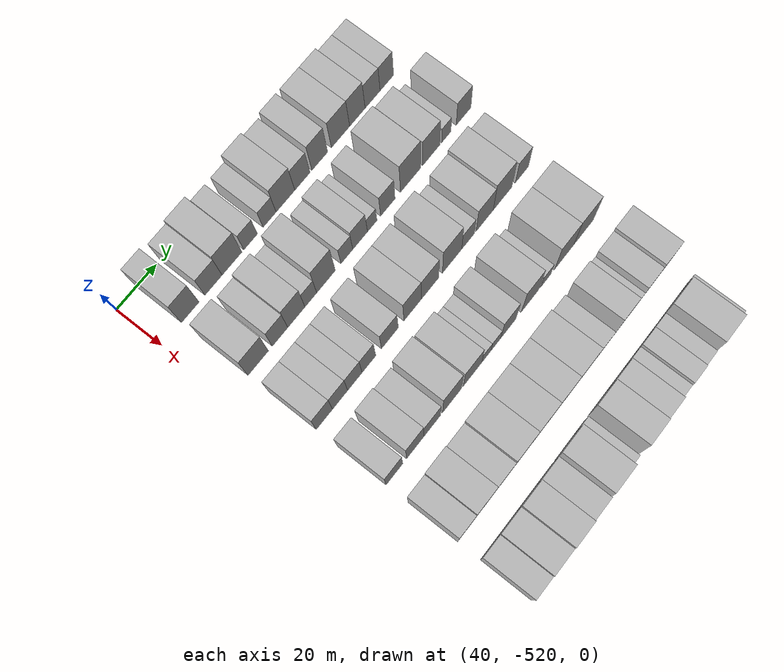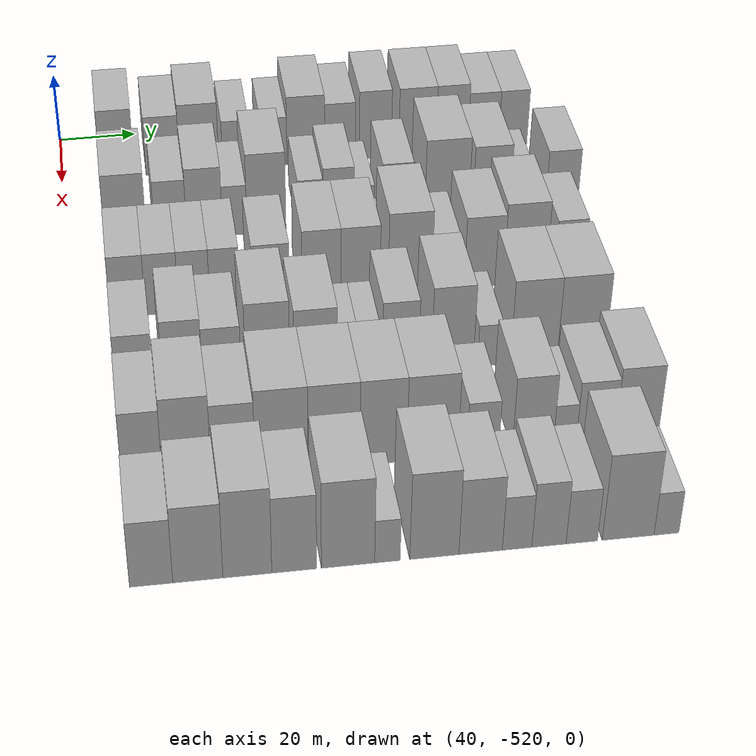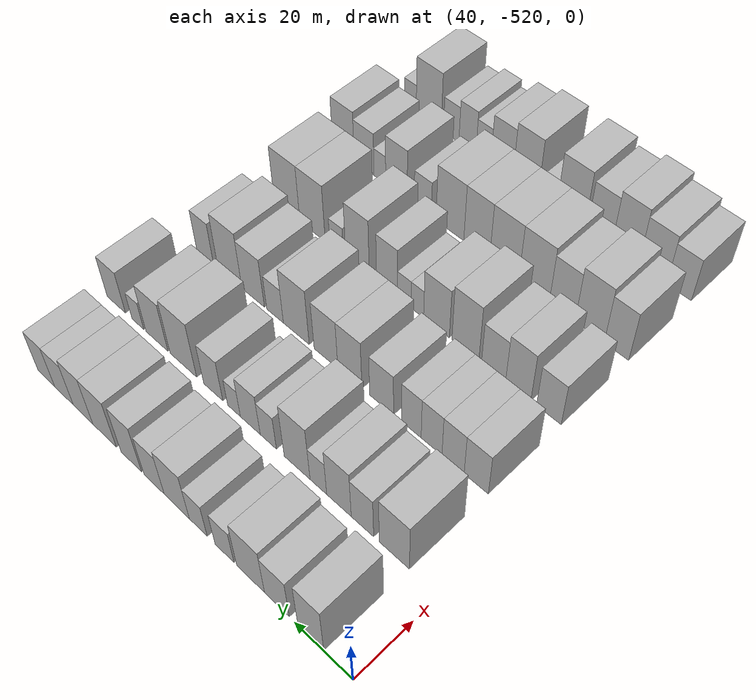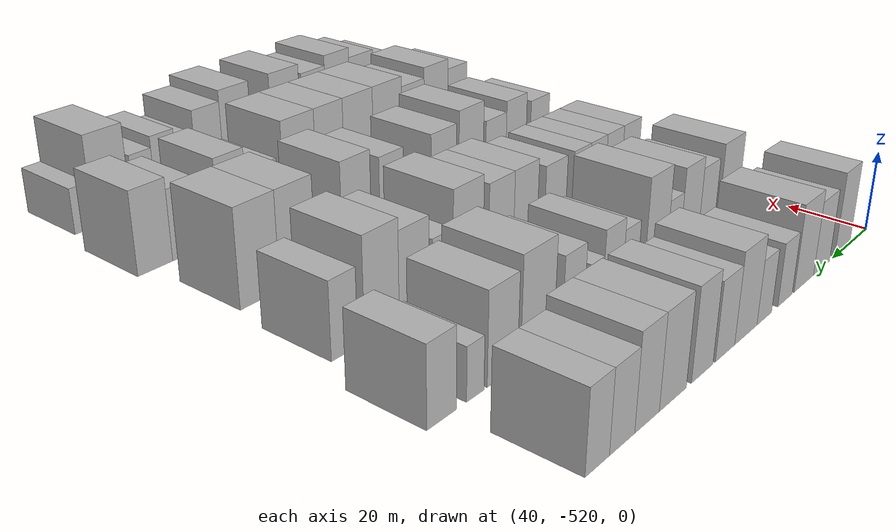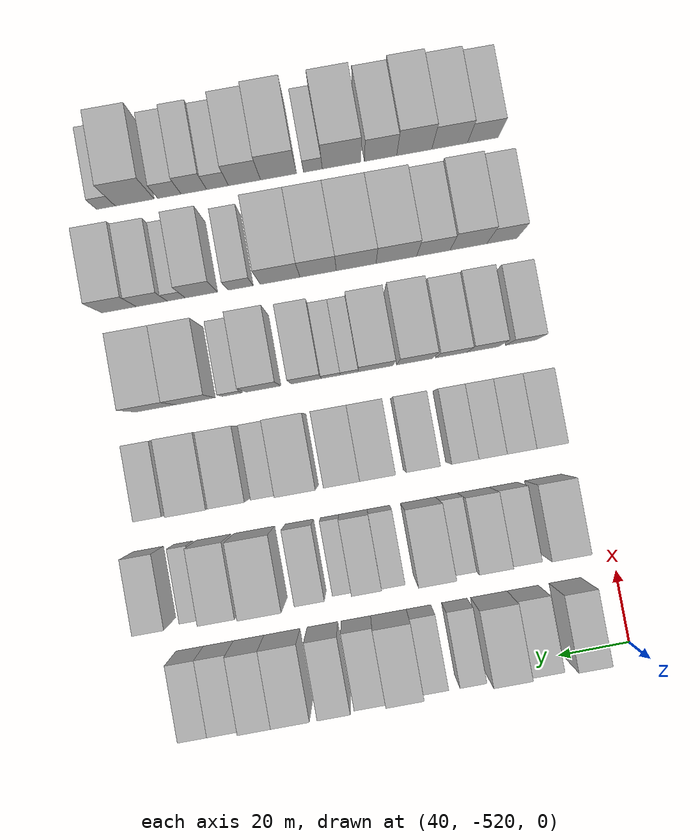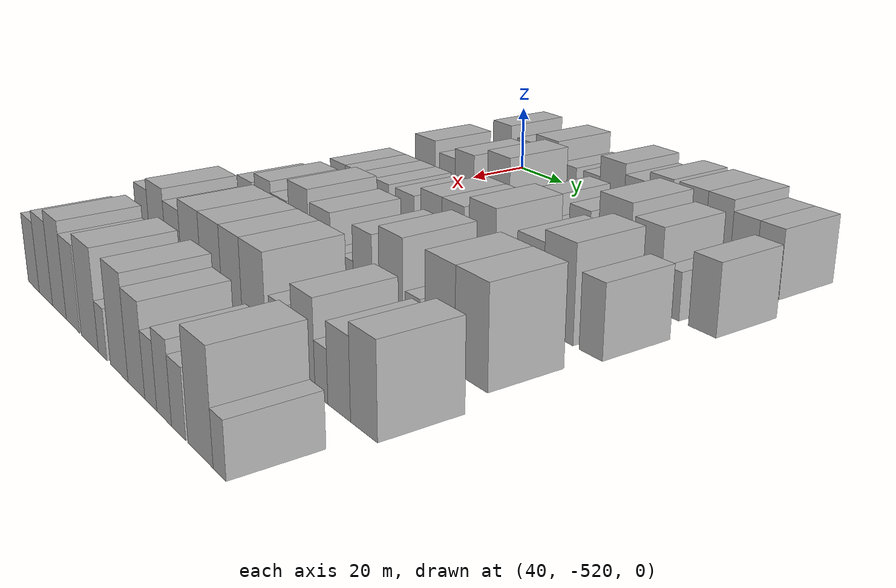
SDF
<sdf version="1.6">
 <world name="default">
  <model name="building_1">
   <static>1</static>
   <pose>50.0000 -505.5305 0 0.000000 0.000000 0.000000</pose>
   <link name="link">
    <pose>0 0 10.50 0 0 0</pose>
    <collision name="collision"><geometry><box><size>20.0000 8.9389 21.0000</size></box></geometry></collision>
    <visual name="visual">
     <cast_shadows>0</cast_shadows>
     <geometry><box><size>20.0000 8.9389 21.0000</size></box></geometry>
     <material>
      <script>
       <uri>model://HANNAS_wall/materials/scripts</uri>
       <uri>model://HANNAS_wall/materials/textures</uri>
       <name>vrc/HANNAS_wall</name>
      </script>
     </material>
    </visual>
   </link>
  </model>
  <model name="building_2">
   <static>1</static>
   <pose>50.0000 -493.6415 0 0.000000 0.000000 0.000000</pose>
   <link name="link">
    <pose>0 0 9.00 0 0 0</pose>
    <collision name="collision"><geometry><box><size>20.0000 8.8392 18.0000</size></box></geometry></collision>
    <visual name="visual">
     <cast_shadows>0</cast_shadows>
     <geometry><box><size>20.0000 8.8392 18.0000</size></box></geometry>
     <material>
      <script>
       <uri>model://HANNAS_wall/materials/scripts</uri>
       <uri>model://HANNAS_wall/materials/textures</uri>
       <name>vrc/HANNAS_wall</name>
      </script>
     </material>
    </visual>
   </link>
  </model>
  <model name="building_3">
   <static>1</static>
   <pose>50.0000 -484.0873 0 0.000000 0.000000 0.000000</pose>
   <link name="link">
    <pose>0 0 10.50 0 0 0</pose>
    <collision name="collision"><geometry><box><size>20.0000 10.2692 21.0000</size></box></geometry></collision>
    <visual name="visual">
     <cast_shadows>0</cast_shadows>
     <geometry><box><size>20.0000 10.2692 21.0000</size></box></geometry>
     <material>
      <script>
       <uri>model://HANNAS_wall/materials/scripts</uri>
       <uri>model://HANNAS_wall/materials/textures</uri>
       <name>vrc/HANNAS_wall</name>
      </script>
     </material>
    </visual>
   </link>
  </model>
  <model name="building_4">
   <static>1</static>
   <pose>50.0000 -474.3811 0 0.000000 0.000000 0.000000</pose>
   <link name="link">
    <pose>0 0 7.50 0 0 0</pose>
    <collision name="collision"><geometry><box><size>20.0000 7.1433 15.0000</size></box></geometry></collision>
    <visual name="visual">
     <cast_shadows>0</cast_shadows>
     <geometry><box><size>20.0000 7.1433 15.0000</size></box></geometry>
     <material>
      <script>
       <uri>model://HANNAS_wall/materials/scripts</uri>
       <uri>model://HANNAS_wall/materials/textures</uri>
       <name>vrc/HANNAS_wall</name>
      </script>
     </material>
    </visual>
   </link>
  </model>
  <model name="building_5">
   <static>1</static>
   <pose>50.0000 -464.3578 0 0.000000 0.000000 0.000000</pose>
   <link name="link">
    <pose>0 0 7.50 0 0 0</pose>
    <collision name="collision"><geometry><box><size>20.0000 6.9032 15.0000</size></box></geometry></collision>
    <visual name="visual">
     <cast_shadows>0</cast_shadows>
     <geometry><box><size>20.0000 6.9032 15.0000</size></box></geometry>
     <material>
      <script>
       <uri>model://HANNAS_wall/materials/scripts</uri>
       <uri>model://HANNAS_wall/materials/textures</uri>
       <name>vrc/HANNAS_wall</name>
      </script>
     </material>
    </visual>
   </link>
  </model>
  <model name="building_6">
   <static>1</static>
   <pose>50.0000 -455.9039 0 0.000000 0.000000 0.000000</pose>
   <link name="link">
    <pose>0 0 10.50 0 0 0</pose>
    <collision name="collision"><geometry><box><size>20.0000 10.0047 21.0000</size></box></geometry></collision>
    <visual name="visual">
     <cast_shadows>0</cast_shadows>
     <geometry><box><size>20.0000 10.0047 21.0000</size></box></geometry>
     <material>
      <script>
       <uri>model://HANNAS_wall/materials/scripts</uri>
       <uri>model://HANNAS_wall/materials/textures</uri>
       <name>vrc/HANNAS_wall</name>
      </script>
     </material>
    </visual>
   </link>
  </model>
  <model name="building_7">
   <static>1</static>
   <pose>50.0000 -446.7945 0 0.000000 0.000000 0.000000</pose>
   <link name="link">
    <pose>0 0 9.00 0 0 0</pose>
    <collision name="collision"><geometry><box><size>20.0000 8.2141 18.0000</size></box></geometry></collision>
    <visual name="visual">
     <cast_shadows>0</cast_shadows>
     <geometry><box><size>20.0000 8.2141 18.0000</size></box></geometry>
     <material>
      <script>
       <uri>model://HANNAS_wall/materials/scripts</uri>
       <uri>model://HANNAS_wall/materials/textures</uri>
       <name>vrc/HANNAS_wall</name>
      </script>
     </material>
    </visual>
   </link>
  </model>
  <model name="building_8">
   <static>1</static>
   <pose>50.0000 -437.3820 0 0.000000 0.000000 0.000000</pose>
   <link name="link">
    <pose>0 0 10.50 0 0 0</pose>
    <collision name="collision"><geometry><box><size>20.0000 8.6109 21.0000</size></box></geometry></collision>
    <visual name="visual">
     <cast_shadows>0</cast_shadows>
     <geometry><box><size>20.0000 8.6109 21.0000</size></box></geometry>
     <material>
      <script>
       <uri>model://HANNAS_wall/materials/scripts</uri>
       <uri>model://HANNAS_wall/materials/textures</uri>
       <name>vrc/HANNAS_wall</name>
      </script>
     </material>
    </visual>
   </link>
  </model>
  <model name="building_9">
   <static>1</static>
   <pose>50.0000 -426.0398 0 0.000000 0.000000 0.000000</pose>
   <link name="link">
    <pose>0 0 10.50 0 0 0</pose>
    <collision name="collision"><geometry><box><size>20.0000 10.0735 21.0000</size></box></geometry></collision>
    <visual name="visual">
     <cast_shadows>0</cast_shadows>
     <geometry><box><size>20.0000 10.0735 21.0000</size></box></geometry>
     <material>
      <script>
       <uri>model://HANNAS_wall/materials/scripts</uri>
       <uri>model://HANNAS_wall/materials/textures</uri>
       <name>vrc/HANNAS_wall</name>
      </script>
     </material>
    </visual>
   </link>
  </model>
  <model name="building_10">
   <static>1</static>
   <pose>50.0000 -416.6983 0 0.000000 0.000000 0.000000</pose>
   <link name="link">
    <pose>0 0 10.50 0 0 0</pose>
    <collision name="collision"><geometry><box><size>20.0000 8.6096 21.0000</size></box></geometry></collision>
    <visual name="visual">
     <cast_shadows>0</cast_shadows>
     <geometry><box><size>20.0000 8.6096 21.0000</size></box></geometry>
     <material>
      <script>
       <uri>model://HANNAS_wall/materials/scripts</uri>
       <uri>model://HANNAS_wall/materials/textures</uri>
       <name>vrc/HANNAS_wall</name>
      </script>
     </material>
    </visual>
   </link>
  </model>
  <model name="building_11">
   <static>1</static>
   <pose>50.0000 -408.2185 0 0.000000 0.000000 0.000000</pose>
   <link name="link">
    <pose>0 0 9.00 0 0 0</pose>
    <collision name="collision"><geometry><box><size>20.0000 8.3500 18.0000</size></box></geometry></collision>
    <visual name="visual">
     <cast_shadows>0</cast_shadows>
     <geometry><box><size>20.0000 8.3500 18.0000</size></box></geometry>
     <material>
      <script>
       <uri>model://HANNAS_wall/materials/scripts</uri>
       <uri>model://HANNAS_wall/materials/textures</uri>
       <name>vrc/HANNAS_wall</name>
      </script>
     </material>
    </visual>
   </link>
  </model>
  <model name="building_12">
   <static>1</static>
   <pose>50.0000 -400.2078 0 0.000000 0.000000 0.000000</pose>
   <link name="link">
    <pose>0 0 9.00 0 0 0</pose>
    <collision name="collision"><geometry><box><size>20.0000 7.6714 18.0000</size></box></geometry></collision>
    <visual name="visual">
     <cast_shadows>0</cast_shadows>
     <geometry><box><size>20.0000 7.6714 18.0000</size></box></geometry>
     <material>
      <script>
       <uri>model://HANNAS_wall/materials/scripts</uri>
       <uri>model://HANNAS_wall/materials/textures</uri>
       <name>vrc/HANNAS_wall</name>
      </script>
     </material>
    </visual>
   </link>
  </model>
  <model name="building_105">
   <static>1</static>
   <pose>79.0000 -504.7900 0 0.000000 0.000000 0.000000</pose>
   <link name="link">
    <pose>0 0 10.50 0 0 0</pose>
    <collision name="collision"><geometry><box><size>20.0000 10.4199 21.0000</size></box></geometry></collision>
    <visual name="visual">
     <cast_shadows>0</cast_shadows>
     <geometry><box><size>20.0000 10.4199 21.0000</size></box></geometry>
     <material>
      <script>
       <uri>model://HANNAS_wall/materials/scripts</uri>
       <uri>model://HANNAS_wall/materials/textures</uri>
       <name>vrc/HANNAS_wall</name>
      </script>
     </material>
    </visual>
   </link>
  </model>
  <model name="building_106">
   <static>1</static>
   <pose>79.0000 -493.5761 0 0.000000 0.000000 0.000000</pose>
   <link name="link">
    <pose>0 0 9.00 0 0 0</pose>
    <collision name="collision"><geometry><box><size>20.0000 8.0078 18.0000</size></box></geometry></collision>
    <visual name="visual">
     <cast_shadows>0</cast_shadows>
     <geometry><box><size>20.0000 8.0078 18.0000</size></box></geometry>
     <material>
      <script>
       <uri>model://HANNAS_wall/materials/scripts</uri>
       <uri>model://HANNAS_wall/materials/textures</uri>
       <name>vrc/HANNAS_wall</name>
      </script>
     </material>
    </visual>
   </link>
  </model>
  <model name="building_107">
   <static>1</static>
   <pose>79.0000 -485.0852 0 0.000000 0.000000 0.000000</pose>
   <link name="link">
    <pose>0 0 10.50 0 0 0</pose>
    <collision name="collision"><geometry><box><size>20.0000 8.9740 21.0000</size></box></geometry></collision>
    <visual name="visual">
     <cast_shadows>0</cast_shadows>
     <geometry><box><size>20.0000 8.9740 21.0000</size></box></geometry>
     <material>
      <script>
       <uri>model://HANNAS_wall/materials/scripts</uri>
       <uri>model://HANNAS_wall/materials/textures</uri>
       <name>vrc/HANNAS_wall</name>
      </script>
     </material>
    </visual>
   </link>
  </model>
  <model name="building_108">
   <static>1</static>
   <pose>79.0000 -477.4988 0 0.000000 0.000000 0.000000</pose>
   <link name="link">
    <pose>0 0 7.50 0 0 0</pose>
    <collision name="collision"><geometry><box><size>20.0000 6.1987 15.0000</size></box></geometry></collision>
    <visual name="visual">
     <cast_shadows>0</cast_shadows>
     <geometry><box><size>20.0000 6.1987 15.0000</size></box></geometry>
     <material>
      <script>
       <uri>model://HANNAS_wall/materials/scripts</uri>
       <uri>model://HANNAS_wall/materials/textures</uri>
       <name>vrc/HANNAS_wall</name>
      </script>
     </material>
    </visual>
   </link>
  </model>
  <model name="building_109">
   <static>1</static>
   <pose>79.0000 -469.4663 0 0.000000 0.000000 0.000000</pose>
   <link name="link">
    <pose>0 0 12.00 0 0 0</pose>
    <collision name="collision"><geometry><box><size>20.0000 9.8663 24.0000</size></box></geometry></collision>
    <visual name="visual">
     <cast_shadows>0</cast_shadows>
     <geometry><box><size>20.0000 9.8663 24.0000</size></box></geometry>
     <material>
      <script>
       <uri>model://HANNAS_wall/materials/scripts</uri>
       <uri>model://HANNAS_wall/materials/textures</uri>
       <name>vrc/HANNAS_wall</name>
      </script>
     </material>
    </visual>
   </link>
  </model>
  <model name="building_110">
   <static>1</static>
   <pose>79.0000 -458.3533 0 0.000000 0.000000 0.000000</pose>
   <link name="link">
    <pose>0 0 7.50 0 0 0</pose>
    <collision name="collision"><geometry><box><size>20.0000 6.3597 15.0000</size></box></geometry></collision>
    <visual name="visual">
     <cast_shadows>0</cast_shadows>
     <geometry><box><size>20.0000 6.3597 15.0000</size></box></geometry>
     <material>
      <script>
       <uri>model://HANNAS_wall/materials/scripts</uri>
       <uri>model://HANNAS_wall/materials/textures</uri>
       <name>vrc/HANNAS_wall</name>
      </script>
     </material>
    </visual>
   </link>
  </model>
  <model name="building_111">
   <static>1</static>
   <pose>79.0000 -451.2004 0 0.000000 0.000000 0.000000</pose>
   <link name="link">
    <pose>0 0 9.00 0 0 0</pose>
    <collision name="collision"><geometry><box><size>20.0000 7.9462 18.0000</size></box></geometry></collision>
    <visual name="visual">
     <cast_shadows>0</cast_shadows>
     <geometry><box><size>20.0000 7.9462 18.0000</size></box></geometry>
     <material>
      <script>
       <uri>model://HANNAS_wall/materials/scripts</uri>
       <uri>model://HANNAS_wall/materials/textures</uri>
       <name>vrc/HANNAS_wall</name>
      </script>
     </material>
    </visual>
   </link>
  </model>
  <model name="building_112">
   <static>1</static>
   <pose>79.0000 -444.6499 0 0.000000 0.000000 0.000000</pose>
   <link name="link">
    <pose>0 0 6.00 0 0 0</pose>
    <collision name="collision"><geometry><box><size>20.0000 5.1547 12.0000</size></box></geometry></collision>
    <visual name="visual">
     <cast_shadows>0</cast_shadows>
     <geometry><box><size>20.0000 5.1547 12.0000</size></box></geometry>
     <material>
      <script>
       <uri>model://HANNAS_wall/materials/scripts</uri>
       <uri>model://HANNAS_wall/materials/textures</uri>
       <name>vrc/HANNAS_wall</name>
      </script>
     </material>
    </visual>
   </link>
  </model>
  <model name="building_113">
   <static>1</static>
   <pose>79.0000 -436.1100 0 0.000000 0.000000 0.000000</pose>
   <link name="link">
    <pose>0 0 9.00 0 0 0</pose>
    <collision name="collision"><geometry><box><size>20.0000 7.9252 18.0000</size></box></geometry></collision>
    <visual name="visual">
     <cast_shadows>0</cast_shadows>
     <geometry><box><size>20.0000 7.9252 18.0000</size></box></geometry>
     <material>
      <script>
       <uri>model://HANNAS_wall/materials/scripts</uri>
       <uri>model://HANNAS_wall/materials/textures</uri>
       <name>vrc/HANNAS_wall</name>
      </script>
     </material>
    </visual>
   </link>
  </model>
  <model name="building_114">
   <static>1</static>
   <pose>79.0000 -423.4680 0 0.000000 0.000000 0.000000</pose>
   <link name="link">
    <pose>0 0 12.00 0 0 0</pose>
    <collision name="collision"><geometry><box><size>20.0000 11.3587 24.0000</size></box></geometry></collision>
    <visual name="visual">
     <cast_shadows>0</cast_shadows>
     <geometry><box><size>20.0000 11.3587 24.0000</size></box></geometry>
     <material>
      <script>
       <uri>model://HANNAS_wall/materials/scripts</uri>
       <uri>model://HANNAS_wall/materials/textures</uri>
       <name>vrc/HANNAS_wall</name>
      </script>
     </material>
    </visual>
   </link>
  </model>
  <model name="building_115">
   <static>1</static>
   <pose>79.0000 -411.9519 0 0.000000 0.000000 0.000000</pose>
   <link name="link">
    <pose>0 0 10.50 0 0 0</pose>
    <collision name="collision"><geometry><box><size>20.0000 9.6734 21.0000</size></box></geometry></collision>
    <visual name="visual">
     <cast_shadows>0</cast_shadows>
     <geometry><box><size>20.0000 9.6734 21.0000</size></box></geometry>
     <material>
      <script>
       <uri>model://HANNAS_wall/materials/scripts</uri>
       <uri>model://HANNAS_wall/materials/textures</uri>
       <name>vrc/HANNAS_wall</name>
      </script>
     </material>
    </visual>
   </link>
  </model>
  <model name="building_116">
   <static>1</static>
   <pose>79.0000 -403.4763 0 0.000000 0.000000 0.000000</pose>
   <link name="link">
    <pose>0 0 6.00 0 0 0</pose>
    <collision name="collision"><geometry><box><size>20.0000 5.2779 12.0000</size></box></geometry></collision>
    <visual name="visual">
     <cast_shadows>0</cast_shadows>
     <geometry><box><size>20.0000 5.2779 12.0000</size></box></geometry>
     <material>
      <script>
       <uri>model://HANNAS_wall/materials/scripts</uri>
       <uri>model://HANNAS_wall/materials/textures</uri>
       <name>vrc/HANNAS_wall</name>
      </script>
     </material>
    </visual>
   </link>
  </model>
  <model name="building_117">
   <static>1</static>
   <pose>79.0000 -393.6339 0 0.000000 0.000000 0.000000</pose>
   <link name="link">
    <pose>0 0 9.00 0 0 0</pose>
    <collision name="collision"><geometry><box><size>20.0000 8.4069 18.0000</size></box></geometry></collision>
    <visual name="visual">
     <cast_shadows>0</cast_shadows>
     <geometry><box><size>20.0000 8.4069 18.0000</size></box></geometry>
     <material>
      <script>
       <uri>model://HANNAS_wall/materials/scripts</uri>
       <uri>model://HANNAS_wall/materials/textures</uri>
       <name>vrc/HANNAS_wall</name>
      </script>
     </material>
    </visual>
   </link>
  </model>
  <model name="building_222">
   <static>1</static>
   <pose>108.0000 -505.7997 0 0.000000 0.000000 0.000000</pose>
   <link name="link">
    <pose>0 0 9.00 0 0 0</pose>
    <collision name="collision"><geometry><box><size>20.0000 8.4006 18.0000</size></box></geometry></collision>
    <visual name="visual">
     <cast_shadows>0</cast_shadows>
     <geometry><box><size>20.0000 8.4006 18.0000</size></box></geometry>
     <material>
      <script>
       <uri>model://HANNAS_wall/materials/scripts</uri>
       <uri>model://HANNAS_wall/materials/textures</uri>
       <name>vrc/HANNAS_wall</name>
      </script>
     </material>
    </visual>
   </link>
  </model>
  <model name="building_223">
   <static>1</static>
   <pose>108.0000 -497.6739 0 0.000000 0.000000 0.000000</pose>
   <link name="link">
    <pose>0 0 9.00 0 0 0</pose>
    <collision name="collision"><geometry><box><size>20.0000 7.8510 18.0000</size></box></geometry></collision>
    <visual name="visual">
     <cast_shadows>0</cast_shadows>
     <geometry><box><size>20.0000 7.8510 18.0000</size></box></geometry>
     <material>
      <script>
       <uri>model://HANNAS_wall/materials/scripts</uri>
       <uri>model://HANNAS_wall/materials/textures</uri>
       <name>vrc/HANNAS_wall</name>
      </script>
     </material>
    </visual>
   </link>
  </model>
  <model name="building_224">
   <static>1</static>
   <pose>108.0000 -489.9853 0 0.000000 0.000000 0.000000</pose>
   <link name="link">
    <pose>0 0 9.00 0 0 0</pose>
    <collision name="collision"><geometry><box><size>20.0000 7.5261 18.0000</size></box></geometry></collision>
    <visual name="visual">
     <cast_shadows>0</cast_shadows>
     <geometry><box><size>20.0000 7.5261 18.0000</size></box></geometry>
     <material>
      <script>
       <uri>model://HANNAS_wall/materials/scripts</uri>
       <uri>model://HANNAS_wall/materials/textures</uri>
       <name>vrc/HANNAS_wall</name>
      </script>
     </material>
    </visual>
   </link>
  </model>
  <model name="building_225">
   <static>1</static>
   <pose>108.0000 -482.6187 0 0.000000 0.000000 0.000000</pose>
   <link name="link">
    <pose>0 0 9.00 0 0 0</pose>
    <collision name="collision"><geometry><box><size>20.0000 7.2072 18.0000</size></box></geometry></collision>
    <visual name="visual">
     <cast_shadows>0</cast_shadows>
     <geometry><box><size>20.0000 7.2072 18.0000</size></box></geometry>
     <material>
      <script>
       <uri>model://HANNAS_wall/materials/scripts</uri>
       <uri>model://HANNAS_wall/materials/textures</uri>
       <name>vrc/HANNAS_wall</name>
      </script>
     </material>
    </visual>
   </link>
  </model>
  <model name="building_226">
   <static>1</static>
   <pose>108.0000 -471.5165 0 0.000000 0.000000 0.000000</pose>
   <link name="link">
    <pose>0 0 9.00 0 0 0</pose>
    <collision name="collision"><geometry><box><size>20.0000 8.9971 18.0000</size></box></geometry></collision>
    <visual name="visual">
     <cast_shadows>0</cast_shadows>
     <geometry><box><size>20.0000 8.9971 18.0000</size></box></geometry>
     <material>
      <script>
       <uri>model://HANNAS_wall/materials/scripts</uri>
       <uri>model://HANNAS_wall/materials/textures</uri>
       <name>vrc/HANNAS_wall</name>
      </script>
     </material>
    </visual>
   </link>
  </model>
  <model name="building_227">
   <static>1</static>
   <pose>108.0000 -459.3094 0 0.000000 0.000000 0.000000</pose>
   <link name="link">
    <pose>0 0 10.50 0 0 0</pose>
    <collision name="collision"><geometry><box><size>20.0000 9.4171 21.0000</size></box></geometry></collision>
    <visual name="visual">
     <cast_shadows>0</cast_shadows>
     <geometry><box><size>20.0000 9.4171 21.0000</size></box></geometry>
     <material>
      <script>
       <uri>model://HANNAS_wall/materials/scripts</uri>
       <uri>model://HANNAS_wall/materials/textures</uri>
       <name>vrc/HANNAS_wall</name>
      </script>
     </material>
    </visual>
   </link>
  </model>
  <model name="building_228">
   <static>1</static>
   <pose>108.0000 -449.8609 0 0.000000 0.000000 0.000000</pose>
   <link name="link">
    <pose>0 0 10.50 0 0 0</pose>
    <collision name="collision"><geometry><box><size>20.0000 9.4800 21.0000</size></box></geometry></collision>
    <visual name="visual">
     <cast_shadows>0</cast_shadows>
     <geometry><box><size>20.0000 9.4800 21.0000</size></box></geometry>
     <material>
      <script>
       <uri>model://HANNAS_wall/materials/scripts</uri>
       <uri>model://HANNAS_wall/materials/textures</uri>
       <name>vrc/HANNAS_wall</name>
      </script>
     </material>
    </visual>
   </link>
  </model>
  <model name="building_229">
   <static>1</static>
   <pose>108.0000 -437.8000 0 0.000000 0.000000 0.000000</pose>
   <link name="link">
    <pose>0 0 12.00 0 0 0</pose>
    <collision name="collision"><geometry><box><size>20.0000 10.6418 24.0000</size></box></geometry></collision>
    <visual name="visual">
     <cast_shadows>0</cast_shadows>
     <geometry><box><size>20.0000 10.6418 24.0000</size></box></geometry>
     <material>
      <script>
       <uri>model://HANNAS_wall/materials/scripts</uri>
       <uri>model://HANNAS_wall/materials/textures</uri>
       <name>vrc/HANNAS_wall</name>
      </script>
     </material>
    </visual>
   </link>
  </model>
  <model name="building_230">
   <static>1</static>
   <pose>108.0000 -428.9756 0 0.000000 0.000000 0.000000</pose>
   <link name="link">
    <pose>0 0 7.50 0 0 0</pose>
    <collision name="collision"><geometry><box><size>20.0000 7.0070 15.0000</size></box></geometry></collision>
    <visual name="visual">
     <cast_shadows>0</cast_shadows>
     <geometry><box><size>20.0000 7.0070 15.0000</size></box></geometry>
     <material>
      <script>
       <uri>model://HANNAS_wall/materials/scripts</uri>
       <uri>model://HANNAS_wall/materials/textures</uri>
       <name>vrc/HANNAS_wall</name>
      </script>
     </material>
    </visual>
   </link>
  </model>
  <model name="building_231">
   <static>1</static>
   <pose>108.0000 -419.6310 0 0.000000 0.000000 0.000000</pose>
   <link name="link">
    <pose>0 0 10.50 0 0 0</pose>
    <collision name="collision"><geometry><box><size>20.0000 9.6822 21.0000</size></box></geometry></collision>
    <visual name="visual">
     <cast_shadows>0</cast_shadows>
     <geometry><box><size>20.0000 9.6822 21.0000</size></box></geometry>
     <material>
      <script>
       <uri>model://HANNAS_wall/materials/scripts</uri>
       <uri>model://HANNAS_wall/materials/textures</uri>
       <name>vrc/HANNAS_wall</name>
      </script>
     </material>
    </visual>
   </link>
  </model>
  <model name="building_232">
   <static>1</static>
   <pose>108.0000 -409.5060 0 0.000000 0.000000 0.000000</pose>
   <link name="link">
    <pose>0 0 12.00 0 0 0</pose>
    <collision name="collision"><geometry><box><size>20.0000 10.5677 24.0000</size></box></geometry></collision>
    <visual name="visual">
     <cast_shadows>0</cast_shadows>
     <geometry><box><size>20.0000 10.5677 24.0000</size></box></geometry>
     <material>
      <script>
       <uri>model://HANNAS_wall/materials/scripts</uri>
       <uri>model://HANNAS_wall/materials/textures</uri>
       <name>vrc/HANNAS_wall</name>
      </script>
     </material>
    </visual>
   </link>
  </model>
  <model name="building_233">
   <static>1</static>
   <pose>108.0000 -398.4594 0 0.000000 0.000000 0.000000</pose>
   <link name="link">
    <pose>0 0 9.00 0 0 0</pose>
    <collision name="collision"><geometry><box><size>20.0000 7.5253 18.0000</size></box></geometry></collision>
    <visual name="visual">
     <cast_shadows>0</cast_shadows>
     <geometry><box><size>20.0000 7.5253 18.0000</size></box></geometry>
     <material>
      <script>
       <uri>model://HANNAS_wall/materials/scripts</uri>
       <uri>model://HANNAS_wall/materials/textures</uri>
       <name>vrc/HANNAS_wall</name>
      </script>
     </material>
    </visual>
   </link>
  </model>
  <model name="building_335">
   <static>1</static>
   <pose>137.0000 -505.6848 0 0.000000 0.000000 0.000000</pose>
   <link name="link">
    <pose>0 0 9.00 0 0 0</pose>
    <collision name="collision"><geometry><box><size>20.0000 8.6304 18.0000</size></box></geometry></collision>
    <visual name="visual">
     <cast_shadows>0</cast_shadows>
     <geometry><box><size>20.0000 8.6304 18.0000</size></box></geometry>
     <material>
      <script>
       <uri>model://HANNAS_wall/materials/scripts</uri>
       <uri>model://HANNAS_wall/materials/textures</uri>
       <name>vrc/HANNAS_wall</name>
      </script>
     </material>
    </visual>
   </link>
  </model>
  <model name="building_336">
   <static>1</static>
   <pose>137.0000 -494.8519 0 0.000000 0.000000 0.000000</pose>
   <link name="link">
    <pose>0 0 10.50 0 0 0</pose>
    <collision name="collision"><geometry><box><size>20.0000 9.0354 21.0000</size></box></geometry></collision>
    <visual name="visual">
     <cast_shadows>0</cast_shadows>
     <geometry><box><size>20.0000 9.0354 21.0000</size></box></geometry>
     <material>
      <script>
       <uri>model://HANNAS_wall/materials/scripts</uri>
       <uri>model://HANNAS_wall/materials/textures</uri>
       <name>vrc/HANNAS_wall</name>
      </script>
     </material>
    </visual>
   </link>
  </model>
  <model name="building_337">
   <static>1</static>
   <pose>137.0000 -485.9158 0 0.000000 0.000000 0.000000</pose>
   <link name="link">
    <pose>0 0 9.00 0 0 0</pose>
    <collision name="collision"><geometry><box><size>20.0000 8.8369 18.0000</size></box></geometry></collision>
    <visual name="visual">
     <cast_shadows>0</cast_shadows>
     <geometry><box><size>20.0000 8.8369 18.0000</size></box></geometry>
     <material>
      <script>
       <uri>model://HANNAS_wall/materials/scripts</uri>
       <uri>model://HANNAS_wall/materials/textures</uri>
       <name>vrc/HANNAS_wall</name>
      </script>
     </material>
    </visual>
   </link>
  </model>
  <model name="building_338">
   <static>1</static>
   <pose>137.0000 -475.4479 0 0.000000 0.000000 0.000000</pose>
   <link name="link">
    <pose>0 0 12.00 0 0 0</pose>
    <collision name="collision"><geometry><box><size>20.0000 10.0989 24.0000</size></box></geometry></collision>
    <visual name="visual">
     <cast_shadows>0</cast_shadows>
     <geometry><box><size>20.0000 10.0989 24.0000</size></box></geometry>
     <material>
      <script>
       <uri>model://HANNAS_wall/materials/scripts</uri>
       <uri>model://HANNAS_wall/materials/textures</uri>
       <name>vrc/HANNAS_wall</name>
      </script>
     </material>
    </visual>
   </link>
  </model>
  <model name="building_339">
   <static>1</static>
   <pose>137.0000 -464.4345 0 0.000000 0.000000 0.000000</pose>
   <link name="link">
    <pose>0 0 10.50 0 0 0</pose>
    <collision name="collision"><geometry><box><size>20.0000 9.9278 21.0000</size></box></geometry></collision>
    <visual name="visual">
     <cast_shadows>0</cast_shadows>
     <geometry><box><size>20.0000 9.9278 21.0000</size></box></geometry>
     <material>
      <script>
       <uri>model://HANNAS_wall/materials/scripts</uri>
       <uri>model://HANNAS_wall/materials/textures</uri>
       <name>vrc/HANNAS_wall</name>
      </script>
     </material>
    </visual>
   </link>
  </model>
  <model name="building_340">
   <static>1</static>
   <pose>137.0000 -456.9848 0 0.000000 0.000000 0.000000</pose>
   <link name="link">
    <pose>0 0 6.00 0 0 0</pose>
    <collision name="collision"><geometry><box><size>20.0000 4.9714 12.0000</size></box></geometry></collision>
    <visual name="visual">
     <cast_shadows>0</cast_shadows>
     <geometry><box><size>20.0000 4.9714 12.0000</size></box></geometry>
     <material>
      <script>
       <uri>model://HANNAS_wall/materials/scripts</uri>
       <uri>model://HANNAS_wall/materials/textures</uri>
       <name>vrc/HANNAS_wall</name>
      </script>
     </material>
    </visual>
   </link>
  </model>
  <model name="building_341">
   <static>1</static>
   <pose>137.0000 -451.8322 0 0.000000 0.000000 0.000000</pose>
   <link name="link">
    <pose>0 0 6.00 0 0 0</pose>
    <collision name="collision"><geometry><box><size>20.0000 5.3338 12.0000</size></box></geometry></collision>
    <visual name="visual">
     <cast_shadows>0</cast_shadows>
     <geometry><box><size>20.0000 5.3338 12.0000</size></box></geometry>
     <material>
      <script>
       <uri>model://HANNAS_wall/materials/scripts</uri>
       <uri>model://HANNAS_wall/materials/textures</uri>
       <name>vrc/HANNAS_wall</name>
      </script>
     </material>
    </visual>
   </link>
  </model>
  <model name="building_342">
   <static>1</static>
   <pose>137.0000 -444.9274 0 0.000000 0.000000 0.000000</pose>
   <link name="link">
    <pose>0 0 10.50 0 0 0</pose>
    <collision name="collision"><geometry><box><size>20.0000 8.4758 21.0000</size></box></geometry></collision>
    <visual name="visual">
     <cast_shadows>0</cast_shadows>
     <geometry><box><size>20.0000 8.4758 21.0000</size></box></geometry>
     <material>
      <script>
       <uri>model://HANNAS_wall/materials/scripts</uri>
       <uri>model://HANNAS_wall/materials/textures</uri>
       <name>vrc/HANNAS_wall</name>
      </script>
     </material>
    </visual>
   </link>
  </model>
  <model name="building_343">
   <static>1</static>
   <pose>137.0000 -432.7834 0 0.000000 0.000000 0.000000</pose>
   <link name="link">
    <pose>0 0 12.00 0 0 0</pose>
    <collision name="collision"><geometry><box><size>20.0000 9.8121 24.0000</size></box></geometry></collision>
    <visual name="visual">
     <cast_shadows>0</cast_shadows>
     <geometry><box><size>20.0000 9.8121 24.0000</size></box></geometry>
     <material>
      <script>
       <uri>model://HANNAS_wall/materials/scripts</uri>
       <uri>model://HANNAS_wall/materials/textures</uri>
       <name>vrc/HANNAS_wall</name>
      </script>
     </material>
    </visual>
   </link>
  </model>
  <model name="building_344">
   <static>1</static>
   <pose>137.0000 -423.9965 0 0.000000 0.000000 0.000000</pose>
   <link name="link">
    <pose>0 0 6.00 0 0 0</pose>
    <collision name="collision"><geometry><box><size>20.0000 5.7618 12.0000</size></box></geometry></collision>
    <visual name="visual">
     <cast_shadows>0</cast_shadows>
     <geometry><box><size>20.0000 5.7618 12.0000</size></box></geometry>
     <material>
      <script>
       <uri>model://HANNAS_wall/materials/scripts</uri>
       <uri>model://HANNAS_wall/materials/textures</uri>
       <name>vrc/HANNAS_wall</name>
      </script>
     </material>
    </visual>
   </link>
  </model>
  <model name="building_345">
   <static>1</static>
   <pose>137.0000 -413.6019 0 0.000000 0.000000 0.000000</pose>
   <link name="link">
    <pose>0 0 12.00 0 0 0</pose>
    <collision name="collision"><geometry><box><size>20.0000 11.0274 24.0000</size></box></geometry></collision>
    <visual name="visual">
     <cast_shadows>0</cast_shadows>
     <geometry><box><size>20.0000 11.0274 24.0000</size></box></geometry>
     <material>
      <script>
       <uri>model://HANNAS_wall/materials/scripts</uri>
       <uri>model://HANNAS_wall/materials/textures</uri>
       <name>vrc/HANNAS_wall</name>
      </script>
     </material>
    </visual>
   </link>
  </model>
  <model name="building_346">
   <static>1</static>
   <pose>137.0000 -402.3922 0 0.000000 0.000000 0.000000</pose>
   <link name="link">
    <pose>0 0 12.00 0 0 0</pose>
    <collision name="collision"><geometry><box><size>20.0000 11.3918 24.0000</size></box></geometry></collision>
    <visual name="visual">
     <cast_shadows>0</cast_shadows>
     <geometry><box><size>20.0000 11.3918 24.0000</size></box></geometry>
     <material>
      <script>
       <uri>model://HANNAS_wall/materials/scripts</uri>
       <uri>model://HANNAS_wall/materials/textures</uri>
       <name>vrc/HANNAS_wall</name>
      </script>
     </material>
    </visual>
   </link>
  </model>
  <model name="building_451">
   <static>1</static>
   <pose>166.0000 -505.6813 0 0.000000 0.000000 0.000000</pose>
   <link name="link">
    <pose>0 0 10.50 0 0 0</pose>
    <collision name="collision"><geometry><box><size>20.0000 8.6375 21.0000</size></box></geometry></collision>
    <visual name="visual">
     <cast_shadows>0</cast_shadows>
     <geometry><box><size>20.0000 8.6375 21.0000</size></box></geometry>
     <material>
      <script>
       <uri>model://HANNAS_wall/materials/scripts</uri>
       <uri>model://HANNAS_wall/materials/textures</uri>
       <name>vrc/HANNAS_wall</name>
      </script>
     </material>
    </visual>
   </link>
  </model>
  <model name="building_452">
   <static>1</static>
   <pose>166.0000 -496.1202 0 0.000000 0.000000 0.000000</pose>
   <link name="link">
    <pose>0 0 12.00 0 0 0</pose>
    <collision name="collision"><geometry><box><size>20.0000 10.4847 24.0000</size></box></geometry></collision>
    <visual name="visual">
     <cast_shadows>0</cast_shadows>
     <geometry><box><size>20.0000 10.4847 24.0000</size></box></geometry>
     <material>
      <script>
       <uri>model://HANNAS_wall/materials/scripts</uri>
       <uri>model://HANNAS_wall/materials/textures</uri>
       <name>vrc/HANNAS_wall</name>
      </script>
     </material>
    </visual>
   </link>
  </model>
  <model name="building_453">
   <static>1</static>
   <pose>166.0000 -486.1323 0 0.000000 0.000000 0.000000</pose>
   <link name="link">
    <pose>0 0 10.50 0 0 0</pose>
    <collision name="collision"><geometry><box><size>20.0000 9.4911 21.0000</size></box></geometry></collision>
    <visual name="visual">
     <cast_shadows>0</cast_shadows>
     <geometry><box><size>20.0000 9.4911 21.0000</size></box></geometry>
     <material>
      <script>
       <uri>model://HANNAS_wall/materials/scripts</uri>
       <uri>model://HANNAS_wall/materials/textures</uri>
       <name>vrc/HANNAS_wall</name>
      </script>
     </material>
    </visual>
   </link>
  </model>
  <model name="building_454">
   <static>1</static>
   <pose>166.0000 -475.6128 0 0.000000 0.000000 0.000000</pose>
   <link name="link">
    <pose>0 0 12.00 0 0 0</pose>
    <collision name="collision"><geometry><box><size>20.0000 11.5479 24.0000</size></box></geometry></collision>
    <visual name="visual">
     <cast_shadows>0</cast_shadows>
     <geometry><box><size>20.0000 11.5479 24.0000</size></box></geometry>
     <material>
      <script>
       <uri>model://HANNAS_wall/materials/scripts</uri>
       <uri>model://HANNAS_wall/materials/textures</uri>
       <name>vrc/HANNAS_wall</name>
      </script>
     </material>
    </visual>
   </link>
  </model>
  <model name="building_455">
   <static>1</static>
   <pose>166.0000 -464.1944 0 0.000000 0.000000 0.000000</pose>
   <link name="link">
    <pose>0 0 12.00 0 0 0</pose>
    <collision name="collision"><geometry><box><size>20.0000 11.2888 24.0000</size></box></geometry></collision>
    <visual name="visual">
     <cast_shadows>0</cast_shadows>
     <geometry><box><size>20.0000 11.2888 24.0000</size></box></geometry>
     <material>
      <script>
       <uri>model://HANNAS_wall/materials/scripts</uri>
       <uri>model://HANNAS_wall/materials/textures</uri>
       <name>vrc/HANNAS_wall</name>
      </script>
     </material>
    </visual>
   </link>
  </model>
  <model name="building_456">
   <static>1</static>
   <pose>166.0000 -453.4099 0 0.000000 0.000000 0.000000</pose>
   <link name="link">
    <pose>0 0 12.00 0 0 0</pose>
    <collision name="collision"><geometry><box><size>20.0000 10.2801 24.0000</size></box></geometry></collision>
    <visual name="visual">
     <cast_shadows>0</cast_shadows>
     <geometry><box><size>20.0000 10.2801 24.0000</size></box></geometry>
     <material>
      <script>
       <uri>model://HANNAS_wall/materials/scripts</uri>
       <uri>model://HANNAS_wall/materials/textures</uri>
       <name>vrc/HANNAS_wall</name>
      </script>
     </material>
    </visual>
   </link>
  </model>
  <model name="building_457">
   <static>1</static>
   <pose>166.0000 -442.6174 0 0.000000 0.000000 0.000000</pose>
   <link name="link">
    <pose>0 0 12.00 0 0 0</pose>
    <collision name="collision"><geometry><box><size>20.0000 11.3050 24.0000</size></box></geometry></collision>
    <visual name="visual">
     <cast_shadows>0</cast_shadows>
     <geometry><box><size>20.0000 11.3050 24.0000</size></box></geometry>
     <material>
      <script>
       <uri>model://HANNAS_wall/materials/scripts</uri>
       <uri>model://HANNAS_wall/materials/textures</uri>
       <name>vrc/HANNAS_wall</name>
      </script>
     </material>
    </visual>
   </link>
  </model>
  <model name="building_458">
   <static>1</static>
   <pose>166.0000 -431.3991 0 0.000000 0.000000 0.000000</pose>
   <link name="link">
    <pose>0 0 7.50 0 0 0</pose>
    <collision name="collision"><geometry><box><size>20.0000 7.1316 15.0000</size></box></geometry></collision>
    <visual name="visual">
     <cast_shadows>0</cast_shadows>
     <geometry><box><size>20.0000 7.1316 15.0000</size></box></geometry>
     <material>
      <script>
       <uri>model://HANNAS_wall/materials/scripts</uri>
       <uri>model://HANNAS_wall/materials/textures</uri>
       <name>vrc/HANNAS_wall</name>
      </script>
     </material>
    </visual>
   </link>
  </model>
  <model name="building_459">
   <static>1</static>
   <pose>166.0000 -420.2558 0 0.000000 0.000000 0.000000</pose>
   <link name="link">
    <pose>0 0 10.50 0 0 0</pose>
    <collision name="collision"><geometry><box><size>20.0000 9.1550 21.0000</size></box></geometry></collision>
    <visual name="visual">
     <cast_shadows>0</cast_shadows>
     <geometry><box><size>20.0000 9.1550 21.0000</size></box></geometry>
     <material>
      <script>
       <uri>model://HANNAS_wall/materials/scripts</uri>
       <uri>model://HANNAS_wall/materials/textures</uri>
       <name>vrc/HANNAS_wall</name>
      </script>
     </material>
    </visual>
   </link>
  </model>
  <model name="building_460">
   <static>1</static>
   <pose>166.0000 -413.1165 0 0.000000 0.000000 0.000000</pose>
   <link name="link">
    <pose>0 0 6.00 0 0 0</pose>
    <collision name="collision"><geometry><box><size>20.0000 5.1237 12.0000</size></box></geometry></collision>
    <visual name="visual">
     <cast_shadows>0</cast_shadows>
     <geometry><box><size>20.0000 5.1237 12.0000</size></box></geometry>
     <material>
      <script>
       <uri>model://HANNAS_wall/materials/scripts</uri>
       <uri>model://HANNAS_wall/materials/textures</uri>
       <name>vrc/HANNAS_wall</name>
      </script>
     </material>
    </visual>
   </link>
  </model>
  <model name="building_461">
   <static>1</static>
   <pose>166.0000 -406.1805 0 0.000000 0.000000 0.000000</pose>
   <link name="link">
    <pose>0 0 9.00 0 0 0</pose>
    <collision name="collision"><geometry><box><size>20.0000 8.7484 18.0000</size></box></geometry></collision>
    <visual name="visual">
     <cast_shadows>0</cast_shadows>
     <geometry><box><size>20.0000 8.7484 18.0000</size></box></geometry>
     <material>
      <script>
       <uri>model://HANNAS_wall/materials/scripts</uri>
       <uri>model://HANNAS_wall/materials/textures</uri>
       <name>vrc/HANNAS_wall</name>
      </script>
     </material>
    </visual>
   </link>
  </model>
  <model name="building_462">
   <static>1</static>
   <pose>166.0000 -396.9176 0 0.000000 0.000000 0.000000</pose>
   <link name="link">
    <pose>0 0 10.50 0 0 0</pose>
    <collision name="collision"><geometry><box><size>20.0000 9.7773 21.0000</size></box></geometry></collision>
    <visual name="visual">
     <cast_shadows>0</cast_shadows>
     <geometry><box><size>20.0000 9.7773 21.0000</size></box></geometry>
     <material>
      <script>
       <uri>model://HANNAS_wall/materials/scripts</uri>
       <uri>model://HANNAS_wall/materials/textures</uri>
       <name>vrc/HANNAS_wall</name>
      </script>
     </material>
    </visual>
   </link>
  </model>
  <model name="building_554">
   <static>1</static>
   <pose>195.0000 -505.6207 0 0.000000 0.000000 0.000000</pose>
   <link name="link">
    <pose>0 0 9.00 0 0 0</pose>
    <collision name="collision"><geometry><box><size>20.0000 8.7585 18.0000</size></box></geometry></collision>
    <visual name="visual">
     <cast_shadows>0</cast_shadows>
     <geometry><box><size>20.0000 8.7585 18.0000</size></box></geometry>
     <material>
      <script>
       <uri>model://HANNAS_wall/materials/scripts</uri>
       <uri>model://HANNAS_wall/materials/textures</uri>
       <name>vrc/HANNAS_wall</name>
      </script>
     </material>
    </visual>
   </link>
  </model>
  <model name="building_555">
   <static>1</static>
   <pose>195.0000 -496.1256 0 0.000000 0.000000 0.000000</pose>
   <link name="link">
    <pose>0 0 10.50 0 0 0</pose>
    <collision name="collision"><geometry><box><size>20.0000 10.2317 21.0000</size></box></geometry></collision>
    <visual name="visual">
     <cast_shadows>0</cast_shadows>
     <geometry><box><size>20.0000 10.2317 21.0000</size></box></geometry>
     <material>
      <script>
       <uri>model://HANNAS_wall/materials/scripts</uri>
       <uri>model://HANNAS_wall/materials/textures</uri>
       <name>vrc/HANNAS_wall</name>
      </script>
     </material>
    </visual>
   </link>
  </model>
  <model name="building_556">
   <static>1</static>
   <pose>195.0000 -486.0011 0 0.000000 0.000000 0.000000</pose>
   <link name="link">
    <pose>0 0 12.00 0 0 0</pose>
    <collision name="collision"><geometry><box><size>20.0000 10.0173 24.0000</size></box></geometry></collision>
    <visual name="visual">
     <cast_shadows>0</cast_shadows>
     <geometry><box><size>20.0000 10.0173 24.0000</size></box></geometry>
     <material>
      <script>
       <uri>model://HANNAS_wall/materials/scripts</uri>
       <uri>model://HANNAS_wall/materials/textures</uri>
       <name>vrc/HANNAS_wall</name>
      </script>
     </material>
    </visual>
   </link>
  </model>
  <model name="building_557">
   <static>1</static>
   <pose>195.0000 -476.3901 0 0.000000 0.000000 0.000000</pose>
   <link name="link">
    <pose>0 0 10.50 0 0 0</pose>
    <collision name="collision"><geometry><box><size>20.0000 9.2048 21.0000</size></box></geometry></collision>
    <visual name="visual">
     <cast_shadows>0</cast_shadows>
     <geometry><box><size>20.0000 9.2048 21.0000</size></box></geometry>
     <material>
      <script>
       <uri>model://HANNAS_wall/materials/scripts</uri>
       <uri>model://HANNAS_wall/materials/textures</uri>
       <name>vrc/HANNAS_wall</name>
      </script>
     </material>
    </visual>
   </link>
  </model>
  <model name="building_558">
   <static>1</static>
   <pose>195.0000 -465.2729 0 0.000000 0.000000 0.000000</pose>
   <link name="link">
    <pose>0 0 12.00 0 0 0</pose>
    <collision name="collision"><geometry><box><size>20.0000 11.0297 24.0000</size></box></geometry></collision>
    <visual name="visual">
     <cast_shadows>0</cast_shadows>
     <geometry><box><size>20.0000 11.0297 24.0000</size></box></geometry>
     <material>
      <script>
       <uri>model://HANNAS_wall/materials/scripts</uri>
       <uri>model://HANNAS_wall/materials/textures</uri>
       <name>vrc/HANNAS_wall</name>
      </script>
     </material>
    </visual>
   </link>
  </model>
  <model name="building_559">
   <static>1</static>
   <pose>195.0000 -457.1052 0 0.000000 0.000000 0.000000</pose>
   <link name="link">
    <pose>0 0 6.00 0 0 0</pose>
    <collision name="collision"><geometry><box><size>20.0000 5.3056 12.0000</size></box></geometry></collision>
    <visual name="visual">
     <cast_shadows>0</cast_shadows>
     <geometry><box><size>20.0000 5.3056 12.0000</size></box></geometry>
     <material>
      <script>
       <uri>model://HANNAS_wall/materials/scripts</uri>
       <uri>model://HANNAS_wall/materials/textures</uri>
       <name>vrc/HANNAS_wall</name>
      </script>
     </material>
    </visual>
   </link>
  </model>
  <model name="building_560">
   <static>1</static>
   <pose>195.0000 -447.3117 0 0.000000 0.000000 0.000000</pose>
   <link name="link">
    <pose>0 0 12.00 0 0 0</pose>
    <collision name="collision"><geometry><box><size>20.0000 10.2814 24.0000</size></box></geometry></collision>
    <visual name="visual">
     <cast_shadows>0</cast_shadows>
     <geometry><box><size>20.0000 10.2814 24.0000</size></box></geometry>
     <material>
      <script>
       <uri>model://HANNAS_wall/materials/scripts</uri>
       <uri>model://HANNAS_wall/materials/textures</uri>
       <name>vrc/HANNAS_wall</name>
      </script>
     </material>
    </visual>
   </link>
  </model>
  <model name="building_561">
   <static>1</static>
   <pose>195.0000 -437.6061 0 0.000000 0.000000 0.000000</pose>
   <link name="link">
    <pose>0 0 10.50 0 0 0</pose>
    <collision name="collision"><geometry><box><size>20.0000 9.1299 21.0000</size></box></geometry></collision>
    <visual name="visual">
     <cast_shadows>0</cast_shadows>
     <geometry><box><size>20.0000 9.1299 21.0000</size></box></geometry>
     <material>
      <script>
       <uri>model://HANNAS_wall/materials/scripts</uri>
       <uri>model://HANNAS_wall/materials/textures</uri>
       <name>vrc/HANNAS_wall</name>
      </script>
     </material>
    </visual>
   </link>
  </model>
  <model name="building_562">
   <static>1</static>
   <pose>195.0000 -429.9317 0 0.000000 0.000000 0.000000</pose>
   <link name="link">
    <pose>0 0 7.50 0 0 0</pose>
    <collision name="collision"><geometry><box><size>20.0000 6.2189 15.0000</size></box></geometry></collision>
    <visual name="visual">
     <cast_shadows>0</cast_shadows>
     <geometry><box><size>20.0000 6.2189 15.0000</size></box></geometry>
     <material>
      <script>
       <uri>model://HANNAS_wall/materials/scripts</uri>
       <uri>model://HANNAS_wall/materials/textures</uri>
       <name>vrc/HANNAS_wall</name>
      </script>
     </material>
    </visual>
   </link>
  </model>
  <model name="building_563">
   <static>1</static>
   <pose>195.0000 -423.1935 0 0.000000 0.000000 0.000000</pose>
   <link name="link">
    <pose>0 0 9.00 0 0 0</pose>
    <collision name="collision"><geometry><box><size>20.0000 7.2575 18.0000</size></box></geometry></collision>
    <visual name="visual">
     <cast_shadows>0</cast_shadows>
     <geometry><box><size>20.0000 7.2575 18.0000</size></box></geometry>
     <material>
      <script>
       <uri>model://HANNAS_wall/materials/scripts</uri>
       <uri>model://HANNAS_wall/materials/textures</uri>
       <name>vrc/HANNAS_wall</name>
      </script>
     </material>
    </visual>
   </link>
  </model>
  <model name="building_564">
   <static>1</static>
   <pose>195.0000 -416.2168 0 0.000000 0.000000 0.000000</pose>
   <link name="link">
    <pose>0 0 7.50 0 0 0</pose>
    <collision name="collision"><geometry><box><size>20.0000 6.6960 15.0000</size></box></geometry></collision>
    <visual name="visual">
     <cast_shadows>0</cast_shadows>
     <geometry><box><size>20.0000 6.6960 15.0000</size></box></geometry>
     <material>
      <script>
       <uri>model://HANNAS_wall/materials/scripts</uri>
       <uri>model://HANNAS_wall/materials/textures</uri>
       <name>vrc/HANNAS_wall</name>
      </script>
     </material>
    </visual>
   </link>
  </model>
  <model name="building_565">
   <static>1</static>
   <pose>195.0000 -406.3312 0 0.000000 0.000000 0.000000</pose>
   <link name="link">
    <pose>0 0 12.00 0 0 0</pose>
    <collision name="collision"><geometry><box><size>20.0000 11.0752 24.0000</size></box></geometry></collision>
    <visual name="visual">
     <cast_shadows>0</cast_shadows>
     <geometry><box><size>20.0000 11.0752 24.0000</size></box></geometry>
     <material>
      <script>
       <uri>model://HANNAS_wall/materials/scripts</uri>
       <uri>model://HANNAS_wall/materials/textures</uri>
       <name>vrc/HANNAS_wall</name>
      </script>
     </material>
    </visual>
   </link>
  </model>
  <model name="building_566">
   <static>1</static>
   <pose>195.0000 -398.1209 0 0.000000 0.000000 0.000000</pose>
   <link name="link">
    <pose>0 0 6.00 0 0 0</pose>
    <collision name="collision"><geometry><box><size>20.0000 5.3454 12.0000</size></box></geometry></collision>
    <visual name="visual">
     <cast_shadows>0</cast_shadows>
     <geometry><box><size>20.0000 5.3454 12.0000</size></box></geometry>
     <material>
      <script>
       <uri>model://HANNAS_wall/materials/scripts</uri>
       <uri>model://HANNAS_wall/materials/textures</uri>
       <name>vrc/HANNAS_wall</name>
      </script>
     </material>
    </visual>
   </link>
  </model>
 </world>
</sdf>
